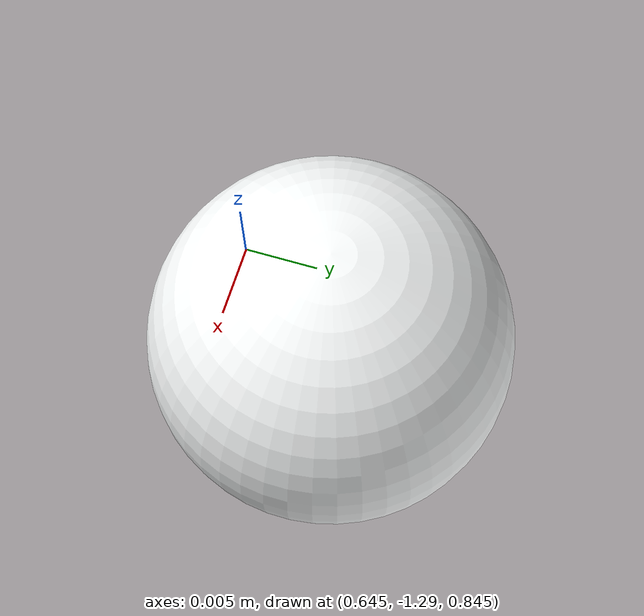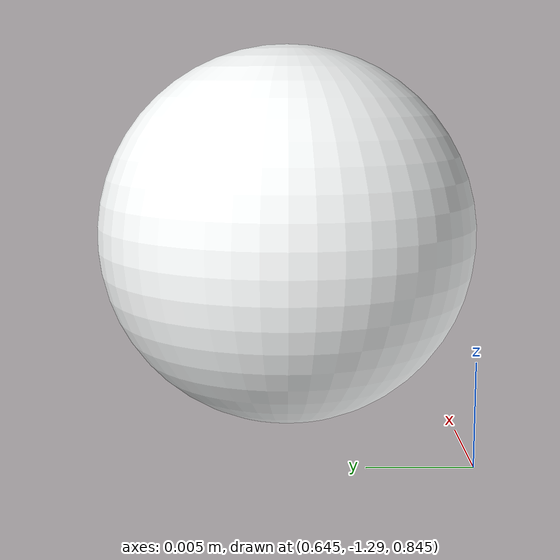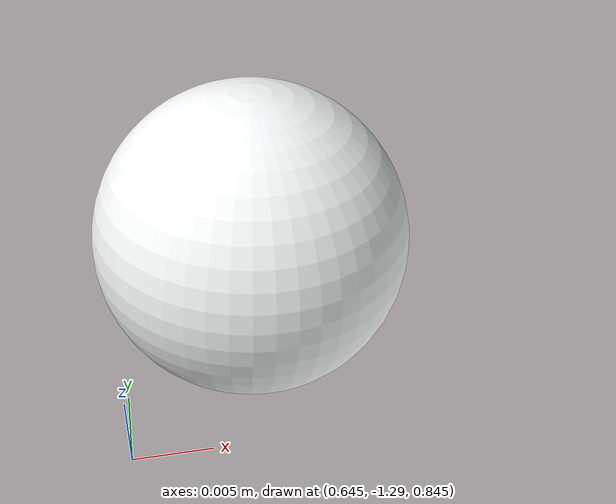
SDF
<sdf version='1.9'>
  <model name='marker'>
    <link name='base_link'>
      <inertial>
        <pose>0.6538161525913621 0.854677523513925 1.28140644383866 0 0 0</pose>
        <mass>0.0041887902047863896</mass>
        <inertia>
          <ixx>1.6755160819145599e-07</ixx>
          <ixy>0</ixy>
          <ixz>0</ixz>
          <iyy>1.6755160819145599e-07</iyy>
          <iyz>0</iyz>
          <izz>1.6755160819145599e-07</izz>
        </inertia>
      </inertial>
      <!-- Sphere primitive so the world buoyancy system can compute displaced volume.
           r=0.009 m → buoyancy 0.031 N < gravity 0.041 N → negatively buoyant. -->
      <collision name='base_link_collision'>
        <pose>0 0 0 0 0 0</pose>
        <geometry>
          <sphere><radius>0.009</radius></sphere>
        </geometry>
      </collision>
      <visual name='base_link_visual'>
        <pose>0 0 0 0 0 0</pose>
        <geometry>
          <mesh>
            <scale>1 1 1</scale>
            <uri>model://marker/meshes/base_link.STL</uri>
          </mesh>
        </geometry>
        <material>
          <diffuse>0.990196 1 1 1</diffuse>
          <ambient>0.990196 1 1 1</ambient>
        </material>
      </visual>
    </link>
  </model>
</sdf>
